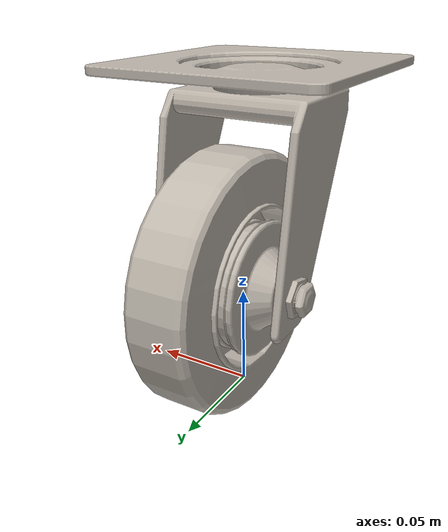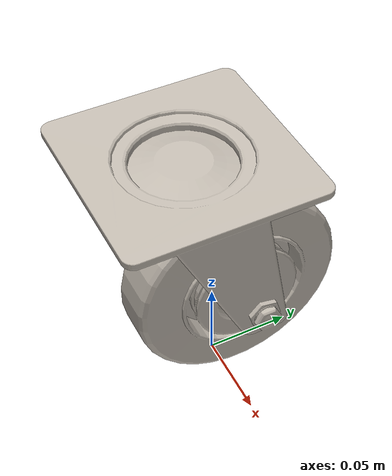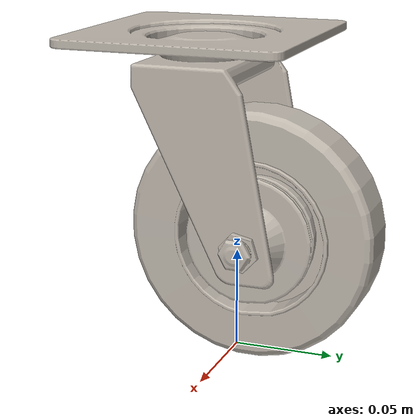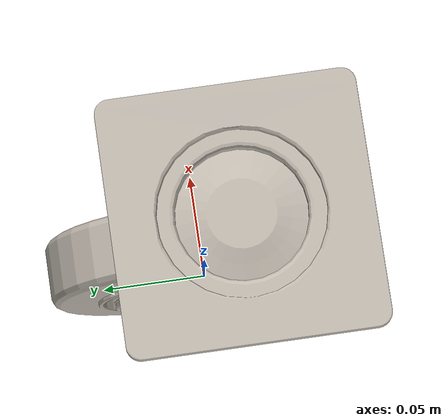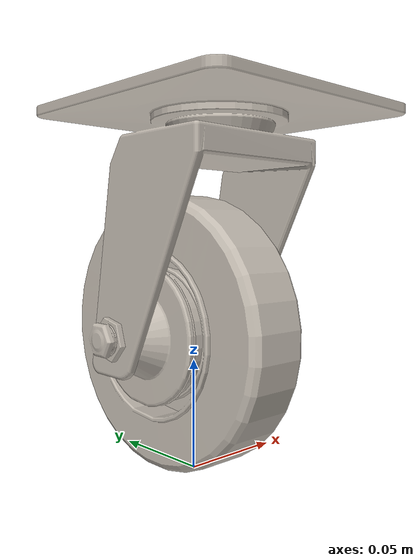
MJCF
<mujoco model="trolley_wheel">
  <compiler meshdir="." texturedir="."/>
  <asset>
    <texture name="trolley_wheel_wheel_color" type="2d" file="textures/wheel_baseColor.png"/>
    <texture name="trolley_wheel_top_color"   type="2d" file="textures/top_part_baseColor.png"/>
    <material name="trolley_wheel_wheel" texture="trolley_wheel_wheel_color"/>
    <material name="trolley_wheel_top"   texture="trolley_wheel_top_color"/>
    <mesh name="trolley_wheel_wheel" file="trolley_wheel_wheel.obj"/>
    <mesh name="trolley_wheel_top"   file="trolley_wheel_top.obj"/>
  </asset>
  <worldbody>
    <body name="trolley_wheel">
      <geom type="mesh" mesh="trolley_wheel_wheel" material="trolley_wheel_wheel"/>
      <geom type="mesh" mesh="trolley_wheel_top"   material="trolley_wheel_top"/>
    </body>
  </worldbody>
</mujoco>
